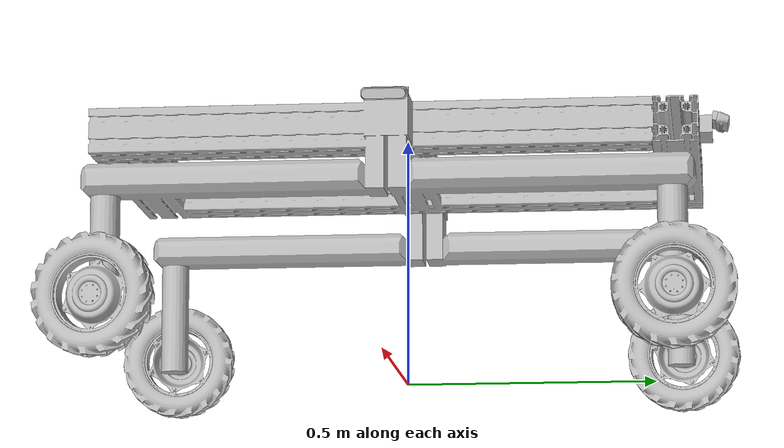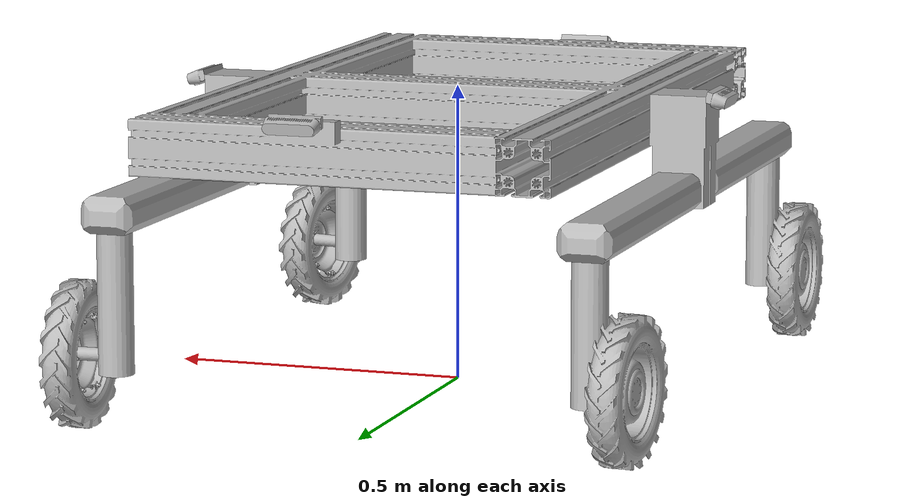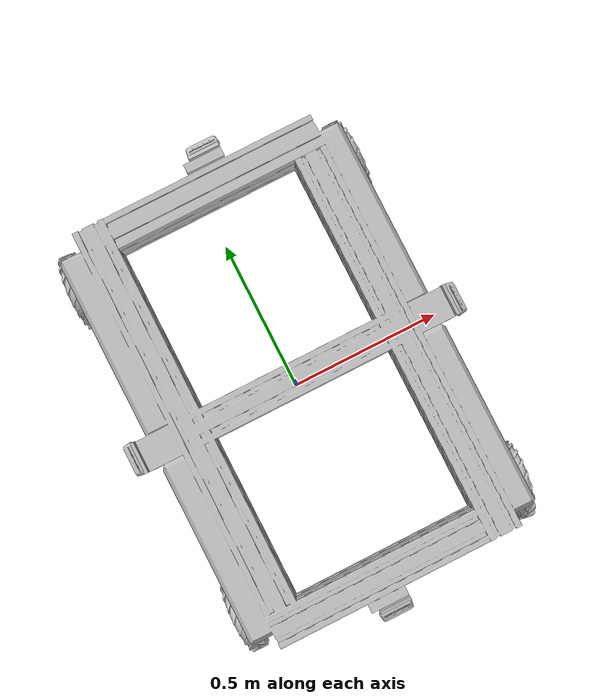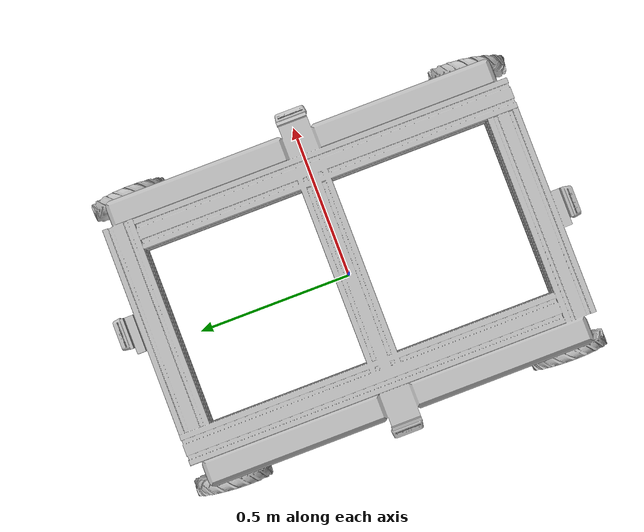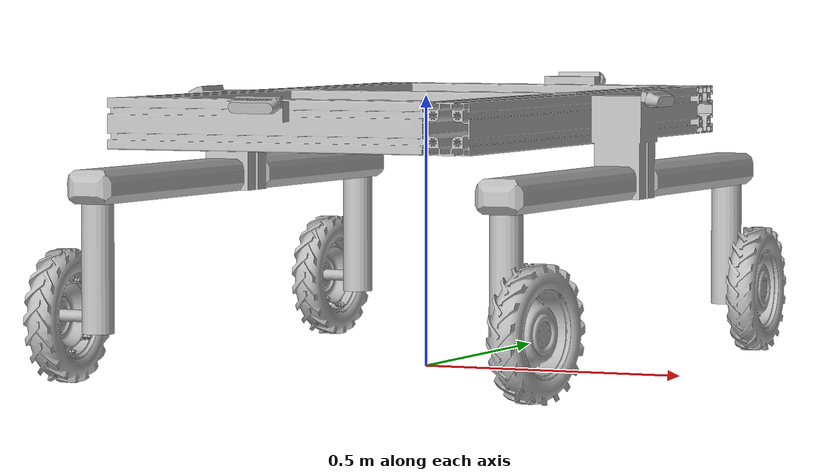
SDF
<sdf version='1.7'>
  <model name='tatekbot_description'>
    <link name='base_footprint'>
      <inertial>
        <pose>0.000519 -0.000776 0.403042 0 -0 0</pose>
        <mass>21.8073</mass>
        <inertia>
          <ixx>0.752761</ixx>
          <ixy>7.00632e-17</ixy>
          <ixz>-8.13585e-16</ixz>
          <iyy>0.141768</iyy>
          <iyz>4.96982e-07</iyz>
          <izz>0.867611</izz>
        </inertia>
      </inertial>
      <collision name='base_footprint_fixed_joint_lump__base_link_collision'>
        <pose>0 0 0.46238 0 -0 0</pose>
        <geometry>
          <mesh>
            <scale>1 1 1</scale>
            <uri>model://tatekbot_description/meshes/base_link.STL</uri>
          </mesh>
        </geometry>
      </collision>
      <visual name='base_footprint_fixed_joint_lump__base_link_visual'>
        <pose>0 0 0.46238 0 -0 0</pose>
        <geometry>
          <mesh>
            <scale>1 1 1</scale>
            <uri>model://tatekbot_description/meshes/base_link.STL</uri>
          </mesh>
        </geometry>
      </visual>
    </link>
    <joint name='BL_steering_joint' type='revolute'>
      <pose relative_to='base_footprint'>0.3925 0.544 0.31888 3.14159 -0 3.14159</pose>
      <parent>base_footprint</parent>
      <child>BL_steering</child>
      <axis>
        <xyz>0 0 1</xyz>
        <limit>
          <lower>-2.1</lower>
          <upper>2.1</upper>
          <effort>5</effort>
          <velocity>6.28</velocity>
        </limit>
        <dynamics>
          <spring_reference>0</spring_reference>
          <spring_stiffness>0</spring_stiffness>
        </dynamics>
      </axis>
    </joint>
    <link name='BL_steering'>
      <pose relative_to='BL_steering_joint'>0 0 0 0 -0 0</pose>
      <inertial>
        <pose>0.000312 -1.1e-05 0.113798 0 -0 0</pose>
        <mass>0.599203</mass>
        <inertia>
          <ixx>0.00274357</ixx>
          <ixy>-1.36105e-07</ixy>
          <ixz>-1.6094e-05</ixz>
          <iyy>0.00273974</iyy>
          <iyz>5.68945e-07</iyz>
          <izz>0.000250812</izz>
        </inertia>
      </inertial>
      <collision name='BL_steering_collision'>
        <pose>0 0 0 0 -0 0</pose>
        <geometry>
          <mesh>
            <scale>1 1 1</scale>
            <uri>model://tatekbot_description/meshes/BL_steering.STL</uri>
          </mesh>
        </geometry>
      </collision>
      <visual name='BL_steering_visual'>
        <pose>0 0 0 0 -0 0</pose>
        <geometry>
          <mesh>
            <scale>1 1 1</scale>
            <uri>model://tatekbot_description/meshes/BL_steering.STL</uri>
          </mesh>
        </geometry>
      </visual>
    </link>
    <joint name='BL_motor_joint' type='revolute'>
      <pose relative_to='BL_steering'>-0.01599 0.000566 0.2 0 -0 0</pose>
      <parent>BL_steering</parent>
      <child>BL_motor</child>
      <axis>
        <xyz>0.999374 0.035367 0</xyz>
        <limit>
          <lower>-1e+16</lower>
          <upper>1e+16</upper>
        </limit>
        <dynamics>
          <spring_reference>0</spring_reference>
          <spring_stiffness>0</spring_stiffness>
        </dynamics>
      </axis>
    </joint>
    <link name='BL_motor'>
      <pose relative_to='BL_motor_joint'>0 0 0 0 -0 0</pose>
      <inertial>
        <pose>-0.044184 0.001566 0 0 -0 0</pose>
        <mass>0.303595</mass>
        <inertia>
          <ixx>0.00268278</ixx>
          <ixy>-4.42197e-05</ixy>
          <ixz>-2.92611e-10</ixz>
          <iyy>0.00143481</iyy>
          <iyz>-9.07407e-09</iyz>
          <izz>0.00143333</izz>
        </inertia>
      </inertial>
      <collision name='BL_motor_collision'>
        <pose>0 0 0 0 -0 0</pose>
        <geometry>
          <mesh>
            <scale>1 1 1</scale>
            <uri>model://tatekbot_description/meshes/BL_motor.STL</uri>
          </mesh>
        </geometry>
      </collision>
      <visual name='BL_motor_visual'>
        <pose>0 0 0 0 -0 0</pose>
        <geometry>
          <mesh>
            <scale>1 1 1</scale>
            <uri>model://tatekbot_description/meshes/BL_motor.STL</uri>
          </mesh>
        </geometry>
      </visual>
    </link>
    <joint name='BR_steering_joint' type='revolute'>
      <pose relative_to='base_footprint'>-0.3925 0.544 0.31888 3.14159 -0 3.14159</pose>
      <parent>base_footprint</parent>
      <child>BR_steering</child>
      <axis>
        <xyz>0 0 1</xyz>
        <limit>
          <lower>-2.1</lower>
          <upper>2.1</upper>
          <effort>5</effort>
          <velocity>6.28</velocity>
        </limit>
        <dynamics>
          <spring_reference>0</spring_reference>
          <spring_stiffness>0</spring_stiffness>
        </dynamics>
      </axis>
    </joint>
    <link name='BR_steering'>
      <pose relative_to='BR_steering_joint'>0 0 0 0 -0 0</pose>
      <inertial>
        <pose>-0.000311 -2.6e-05 0.113798 0 -0 0</pose>
        <mass>0.599203</mass>
        <inertia>
          <ixx>0.00274355</ixx>
          <ixy>3.1557e-07</ixy>
          <ixz>1.60493e-05</ixz>
          <iyy>0.00273976</iyy>
          <iyz>1.32748e-06</iyz>
          <izz>0.000250812</izz>
        </inertia>
      </inertial>
      <collision name='BR_steering_collision'>
        <pose>0 0 0 0 -0 0</pose>
        <geometry>
          <mesh>
            <scale>1 1 1</scale>
            <uri>model://tatekbot_description/meshes/BR_steering.STL</uri>
          </mesh>
        </geometry>
      </collision>
      <visual name='BR_steering_visual'>
        <pose>0 0 0 0 -0 0</pose>
        <geometry>
          <mesh>
            <scale>1 1 1</scale>
            <uri>model://tatekbot_description/meshes/BR_steering.STL</uri>
          </mesh>
        </geometry>
      </visual>
    </link>
    <joint name='BR_motor_joint' type='revolute'>
      <pose relative_to='BR_steering'>0.015946 0.001318 0.2 0 -0 0</pose>
      <parent>BR_steering</parent>
      <child>BR_motor</child>
      <axis>
        <xyz>0.9966 0.082393 0</xyz>
        <limit>
          <lower>-1e+16</lower>
          <upper>1e+16</upper>
        </limit>
        <dynamics>
          <spring_reference>0</spring_reference>
          <spring_stiffness>0</spring_stiffness>
        </dynamics>
      </axis>
    </joint>
    <link name='BR_motor'>
      <pose relative_to='BR_motor_joint'>0 0 0 0 -0 0</pose>
      <inertial>
        <pose>0.044062 0.003645 0 0 -0 0</pose>
        <mass>0.303595</mass>
        <inertia>
          <ixx>0.00267585</ixx>
          <ixy>0.000102731</ixy>
          <ixz>5.20432e-10</ixz>
          <iyy>0.00144174</iyy>
          <iyz>-7.81484e-09</iyz>
          <izz>0.00143333</izz>
        </inertia>
      </inertial>
      <collision name='BR_motor_collision'>
        <pose>0 0 0 0 -0 0</pose>
        <geometry>
          <mesh>
            <scale>1 1 1</scale>
            <uri>model://tatekbot_description/meshes/BR_motor.STL</uri>
          </mesh>
        </geometry>
      </collision>
      <visual name='BR_motor_visual'>
        <pose>0 0 0 0 -0 0</pose>
        <geometry>
          <mesh>
            <scale>1 1 1</scale>
            <uri>model://tatekbot_description/meshes/BR_motor.STL</uri>
          </mesh>
        </geometry>
      </visual>
    </link>
    <joint name='FL_steering_joint' type='revolute'>
      <pose relative_to='base_footprint'>0.3925 -0.55 0.31888 -3.14159 -0 -3.14159</pose>
      <parent>base_footprint</parent>
      <child>FL_steering</child>
      <axis>
        <xyz>0 0 1</xyz>
        <limit>
          <lower>-2.1</lower>
          <upper>2.1</upper>
          <effort>5</effort>
          <velocity>6.28</velocity>
        </limit>
        <dynamics>
          <spring_reference>0</spring_reference>
          <spring_stiffness>0</spring_stiffness>
        </dynamics>
      </axis>
    </joint>
    <link name='FL_steering'>
      <pose relative_to='FL_steering_joint'>0 0 0 0 -0 0</pose>
      <inertial>
        <pose>0.000307 5.5e-05 0.113798 0 -0 0</pose>
        <mass>0.599203</mass>
        <inertia>
          <ixx>0.00274346</ixx>
          <ixy>6.62648e-07</ixy>
          <ixz>-1.58552e-05</ixz>
          <iyy>0.00273985</iyy>
          <iyz>-2.81999e-06</iyz>
          <izz>0.000250812</izz>
        </inertia>
      </inertial>
      <collision name='FL_steering_collision'>
        <pose>0 0 0 0 -0 0</pose>
        <geometry>
          <mesh>
            <scale>1 1 1</scale>
            <uri>model://tatekbot_description/meshes/FL_steering.STL</uri>
          </mesh>
        </geometry>
      </collision>
      <visual name='FL_steering_visual'>
        <pose>0 0 0 0 -0 0</pose>
        <geometry>
          <mesh>
            <scale>1 1 1</scale>
            <uri>model://tatekbot_description/meshes/FL_steering.STL</uri>
          </mesh>
        </geometry>
      </visual>
    </link>
    <joint name='FL_motor_joint' type='revolute'>
      <pose relative_to='FL_steering'>-0.015753 -0.002801 0.2 0 -0 0</pose>
      <parent>FL_steering</parent>
      <child>FL_motor</child>
      <axis>
        <xyz>0.984555 0.175073 0</xyz>
        <limit>
          <lower>-1e+16</lower>
          <upper>1e+16</upper>
        </limit>
        <dynamics>
          <spring_reference>0</spring_reference>
          <spring_stiffness>0</spring_stiffness>
        </dynamics>
      </axis>
    </joint>
    <link name='FL_motor'>
      <pose relative_to='FL_motor_joint'>0 0 0 0 -0 0</pose>
      <inertial>
        <pose>-0.04353 -0.007739 2e-06 0 -0 0</pose>
        <mass>0.303595</mass>
        <inertia>
          <ixx>0.002646</ixx>
          <ixy>0.000215644</ixy>
          <ixz>7.52491e-09</ixz>
          <iyy>0.00147164</iyy>
          <iyz>-3.94482e-08</iyz>
          <izz>0.00143328</izz>
        </inertia>
      </inertial>
      <collision name='FL_motor_collision'>
        <pose>0 0 0 0 -0 0</pose>
        <geometry>
          <mesh>
            <scale>1 1 1</scale>
            <uri>model://tatekbot_description/meshes/FL_motor.STL</uri>
          </mesh>
        </geometry>
      </collision>
      <visual name='FL_motor_visual'>
        <pose>0 0 0 0 -0 0</pose>
        <geometry>
          <mesh>
            <scale>1 1 1</scale>
            <uri>model://tatekbot_description/meshes/FL_motor.STL</uri>
          </mesh>
        </geometry>
      </visual>
    </link>
    <joint name='FR_steering_joint' type='revolute'>
      <pose relative_to='base_footprint'>-0.3925 -0.544 0.31888 3.14159 -0 3.14159</pose>
      <parent>base_footprint</parent>
      <child>FR_steering</child>
      <axis>
        <xyz>0 0 1</xyz>
        <limit>
          <lower>-2.1</lower>
          <upper>2.1</upper>
          <effort>5</effort>
          <velocity>6.28</velocity>
        </limit>
        <dynamics>
          <spring_reference>0</spring_reference>
          <spring_stiffness>0</spring_stiffness>
        </dynamics>
      </axis>
    </joint>
    <link name='FR_steering'>
      <pose relative_to='FR_steering_joint'>0 0 0 0 -0 0</pose>
      <inertial>
        <pose>-0.000312 -0 0.113798 0 -0 0</pose>
        <mass>0.599203</mass>
        <inertia>
          <ixx>0.00274358</ixx>
          <ixy>-1.88907e-10</ixy>
          <ixz>1.61041e-05</ixz>
          <iyy>0.00273973</iyy>
          <iyz>6.14452e-10</iyz>
          <izz>0.000250812</izz>
        </inertia>
      </inertial>
      <collision name='FR_steering_collision'>
        <pose>0 0 0 0 -0 0</pose>
        <geometry>
          <mesh>
            <scale>1 1 1</scale>
            <uri>model://tatekbot_description/meshes/FR_steering.STL</uri>
          </mesh>
        </geometry>
      </collision>
      <visual name='FR_steering_visual'>
        <pose>0 0 0 0 -0 0</pose>
        <geometry>
          <mesh>
            <scale>1 1 1</scale>
            <uri>model://tatekbot_description/meshes/FR_steering.STL</uri>
          </mesh>
        </geometry>
      </visual>
    </link>
    <joint name='FR_motor_joint' type='revolute'>
      <pose relative_to='FR_steering'>0.016 0 0.2 0 -0 0</pose>
      <parent>FR_steering</parent>
      <child>FR_motor</child>
      <axis>
        <xyz>1 0 0</xyz>
        <limit>
          <lower>-1e+16</lower>
          <upper>1e+16</upper>
        </limit>
        <dynamics>
          <spring_reference>0</spring_reference>
          <spring_stiffness>0</spring_stiffness>
        </dynamics>
      </axis>
    </joint>
    <link name='FR_motor'>
      <pose relative_to='FR_motor_joint'>0 0 0 0 -0 0</pose>
      <inertial>
        <pose>0.044212 -2e-06 1e-06 0 -0 0</pose>
        <mass>0.303595</mass>
        <inertia>
          <ixx>0.00268434</ixx>
          <ixy>6.54189e-10</ixy>
          <ixz>-3.22975e-10</ixz>
          <iyy>0.00143327</iyy>
          <iyz>3.52871e-08</iyz>
          <izz>0.00143331</izz>
        </inertia>
      </inertial>
      <collision name='FR_motor_collision'>
        <pose>0 0 0 0 -0 0</pose>
        <geometry>
          <mesh>
            <scale>1 1 1</scale>
            <uri>model://tatekbot_description/meshes/FR_motor.STL</uri>
          </mesh>
        </geometry>
      </collision>
      <visual name='FR_motor_visual'>
        <pose>0 0 0 0 -0 0</pose>
        <geometry>
          <mesh>
            <scale>1 1 1</scale>
            <uri>model://tatekbot_description/meshes/FR_motor.STL</uri>
          </mesh>
        </geometry>
      </visual>
    </link>
    <joint name='back_cam_joint' type='fixed'>
      <pose relative_to='base_footprint'>0.056705 0.62923 0.518193 -3.14159 -0 -3.14159</pose>
      <parent>base_footprint</parent>
      <child>back_cam</child>
      <axis>
        <dynamics>
          <spring_reference>0</spring_reference>
          <spring_stiffness>0</spring_stiffness>
        </dynamics>
        <xyz>0 0 1</xyz>
        <limit>
          <lower>-1e+16</lower>
          <upper>1e+16</upper>
        </limit>
      </axis>
      <physics>
        <ode>
          <limit>
            <cfm>0</cfm>
            <erp>0.2</erp>
          </limit>
        </ode>
      </physics>
    </joint>
    <link name='back_cam'>
      <pose relative_to='back_cam_joint'>0 0 0 0 -0 0</pose>
      <inertial>
        <pose>0.000626 0.006714 0.001413 0 -0 0</pose>
        <mass>0.150746</mass>
        <inertia>
          <ixx>1.49886e-05</ixx>
          <ixy>7.80617e-07</ixy>
          <ixz>3.47097e-07</ixz>
          <iyy>0.000100223</iyy>
          <iyz>-1.82861e-06</iyz>
          <izz>0.000102534</izz>
        </inertia>
      </inertial>
      <collision name='back_cam_collision'>
        <pose>0 0 0 0 -0 0</pose>
        <geometry>
          <mesh>
            <scale>1 1 1</scale>
            <uri>model://tatekbot_description/meshes/back_cam.STL</uri>
          </mesh>
        </geometry>
      </collision>
      <visual name='back_cam_visual'>
        <pose>0 0 0 0 -0 0</pose>
        <geometry>
          <mesh>
            <scale>1 1 1</scale>
            <uri>model://tatekbot_description/meshes/back_cam.STL</uri>
          </mesh>
        </geometry>
      </visual>
    </link>
    <joint name='bottom_cam_joint' type='fixed'>
      <pose relative_to='base_footprint'>0 0 0.41738 -3.14159 -0 -3.14159</pose>
      <parent>base_footprint</parent>
      <child>bottom_cam</child>
      <axis>
        <dynamics>
          <spring_reference>0</spring_reference>
          <spring_stiffness>0</spring_stiffness>
        </dynamics>
        <xyz>0 0 1</xyz>
        <limit>
          <lower>-1e+16</lower>
          <upper>1e+16</upper>
        </limit>
      </axis>
      <physics>
        <ode>
          <limit>
            <cfm>0</cfm>
            <erp>0.2</erp>
          </limit>
        </ode>
      </physics>
    </joint>
    <link name='bottom_cam'>
      <pose relative_to='bottom_cam_joint'>0 0 0 0 -0 0</pose>
      <inertial>
        <pose>-0 0 0.0115 0 -0 0</pose>
        <mass>0.0221286</mass>
        <inertia>
          <ixx>2.66972e-06</ixx>
          <ixy>1.21761e-22</ixy>
          <ixz>9.37331e-39</ixz>
          <iyy>2.66972e-06</iyy>
          <iyz>2.02935e-23</iyz>
          <izz>3.38844e-06</izz>
        </inertia>
      </inertial>
      <collision name='bottom_cam_collision'>
        <pose>0 0 0 0 -0 0</pose>
        <geometry>
          <mesh>
            <scale>1 1 1</scale>
            <uri>model://tatekbot_description/meshes/bottom_cam.STL</uri>
          </mesh>
        </geometry>
      </collision>
      <visual name='bottom_cam_visual'>
        <pose>0 0 0 0 -0 0</pose>
        <geometry>
          <mesh>
            <scale>1 1 1</scale>
            <uri>model://tatekbot_description/meshes/bottom_cam.STL</uri>
          </mesh>
        </geometry>
      </visual>
    </link>
    <joint name='front_camera_joint' type='fixed'>
      <pose relative_to='base_footprint'>-0.037644 -0.62923 0.501357 -3.14159 -0 -3.14159</pose>
      <parent>base_footprint</parent>
      <child>front_camera</child>
      <axis>
        <dynamics>
          <spring_reference>0</spring_reference>
          <spring_stiffness>0</spring_stiffness>
        </dynamics>
        <xyz>0 0 1</xyz>
        <limit>
          <lower>-1e+16</lower>
          <upper>1e+16</upper>
        </limit>
      </axis>
      <physics>
        <ode>
          <limit>
            <cfm>0</cfm>
            <erp>0.2</erp>
          </limit>
        </ode>
      </physics>
    </joint>
    <link name='front_camera'>
      <pose relative_to='front_camera_joint'>0 0 0 0 -0 0</pose>
      <inertial>
        <pose>-0.000626 -0.006714 0.001413 0 -0 0</pose>
        <mass>0.150746</mass>
        <inertia>
          <ixx>1.49886e-05</ixx>
          <ixy>7.80617e-07</ixy>
          <ixz>-3.47097e-07</ixz>
          <iyy>0.000100223</iyy>
          <iyz>1.82861e-06</iyz>
          <izz>0.000102534</izz>
        </inertia>
      </inertial>
      <collision name='front_camera_collision'>
        <pose>0 0 0 0 -0 0</pose>
        <geometry>
          <mesh>
            <scale>1 1 1</scale>
            <uri>model://tatekbot_description/meshes/front_camera.STL</uri>
          </mesh>
        </geometry>
      </collision>
      <visual name='front_camera_visual'>
        <pose>0 0 0 0 -0 0</pose>
        <geometry>
          <mesh>
            <scale>1 1 1</scale>
            <uri>model://tatekbot_description/meshes/front_camera.STL</uri>
          </mesh>
        </geometry>
      </visual>
    </link>
    <joint name='left_cam_joint' type='fixed'>
      <pose relative_to='base_footprint'>0.44923 -0.001315 0.500693 -3.14159 -0 -3.14159</pose>
      <parent>base_footprint</parent>
      <child>left_cam</child>
      <axis>
        <dynamics>
          <spring_reference>0</spring_reference>
          <spring_stiffness>0</spring_stiffness>
        </dynamics>
        <xyz>0 0 1</xyz>
        <limit>
          <lower>-1e+16</lower>
          <upper>1e+16</upper>
        </limit>
      </axis>
      <physics>
        <ode>
          <limit>
            <cfm>0</cfm>
            <erp>0.2</erp>
          </limit>
        </ode>
      </physics>
    </joint>
    <link name='left_cam'>
      <pose relative_to='left_cam_joint'>0 0 0 0 -0 0</pose>
      <inertial>
        <pose>-0.006714 0.000626 0.001413 0 -0 0</pose>
        <mass>0.150746</mass>
        <inertia>
          <ixx>0.000100223</ixx>
          <ixy>-7.80618e-07</ixy>
          <ixz>1.82861e-06</ixz>
          <iyy>1.49886e-05</iyy>
          <iyz>3.47097e-07</iyz>
          <izz>0.000102534</izz>
        </inertia>
      </inertial>
      <collision name='left_cam_collision'>
        <pose>0 0 0 0 -0 0</pose>
        <geometry>
          <mesh>
            <scale>1 1 1</scale>
            <uri>model://tatekbot_description/meshes/left_cam.STL</uri>
          </mesh>
        </geometry>
      </collision>
      <visual name='left_cam_visual'>
        <pose>0 0 0 0 -0 0</pose>
        <geometry>
          <mesh>
            <scale>1 1 1</scale>
            <uri>model://tatekbot_description/meshes/left_cam.STL</uri>
          </mesh>
        </geometry>
      </visual>
    </link>
    <joint name='right_cam_joint' type='fixed'>
      <pose relative_to='base_footprint'>-0.44923 0.003034 0.500693 -3.14159 -0 -3.14159</pose>
      <parent>base_footprint</parent>
      <child>right_cam</child>
      <axis>
        <dynamics>
          <spring_reference>0</spring_reference>
          <spring_stiffness>0</spring_stiffness>
        </dynamics>
        <xyz>0 0 1</xyz>
        <limit>
          <lower>-1e+16</lower>
          <upper>1e+16</upper>
        </limit>
      </axis>
      <physics>
        <ode>
          <limit>
            <cfm>0</cfm>
            <erp>0.2</erp>
          </limit>
        </ode>
      </physics>
    </joint>
    <link name='right_cam'>
      <pose relative_to='right_cam_joint'>0 0 0 0 -0 0</pose>
      <inertial>
        <pose>0.006714 -0.000626 0.001413 0 -0 0</pose>
        <mass>0.150746</mass>
        <inertia>
          <ixx>0.000100223</ixx>
          <ixy>-7.80619e-07</ixy>
          <ixz>-1.82861e-06</ixz>
          <iyy>1.49886e-05</iyy>
          <iyz>-3.47097e-07</iyz>
          <izz>0.000102534</izz>
        </inertia>
      </inertial>
      <collision name='right_cam_collision'>
        <pose>0 0 0 0 -0 0</pose>
        <geometry>
          <mesh>
            <scale>1 1 1</scale>
            <uri>model://tatekbot_description/meshes/right_cam.STL</uri>
          </mesh>
        </geometry>
      </collision>
      <visual name='right_cam_visual'>
        <pose>0 0 0 0 -0 0</pose>
        <geometry>
          <mesh>
            <scale>1 1 1</scale>
            <uri>model://tatekbot_description/meshes/right_cam.STL</uri>
          </mesh>
        </geometry>
      </visual>
    </link>
  </model>
</sdf>
